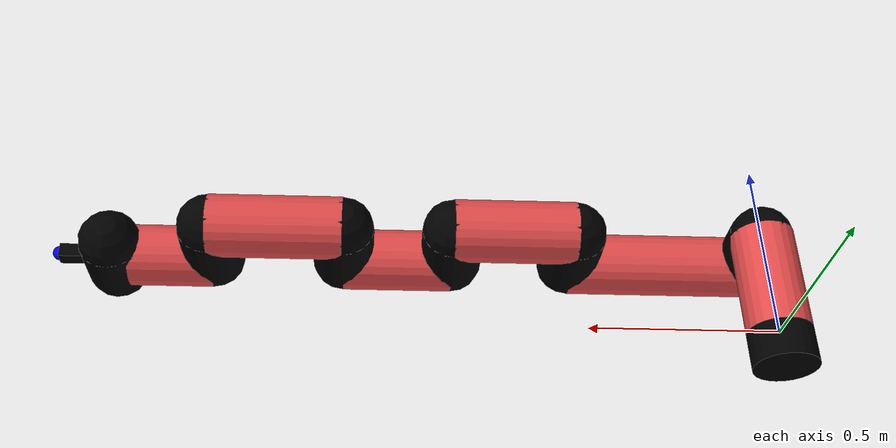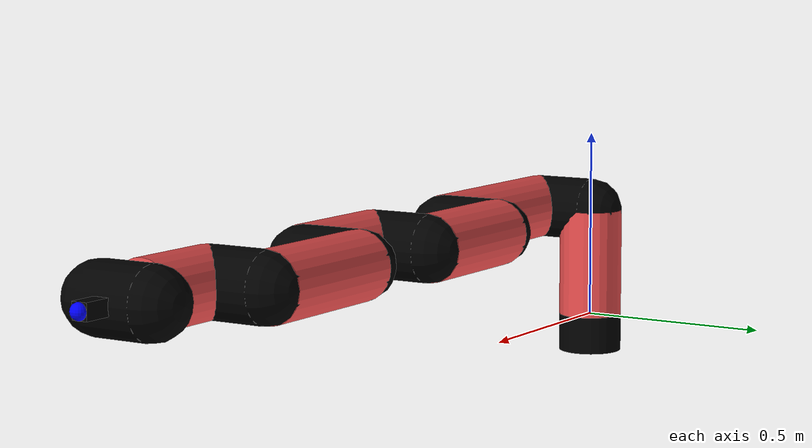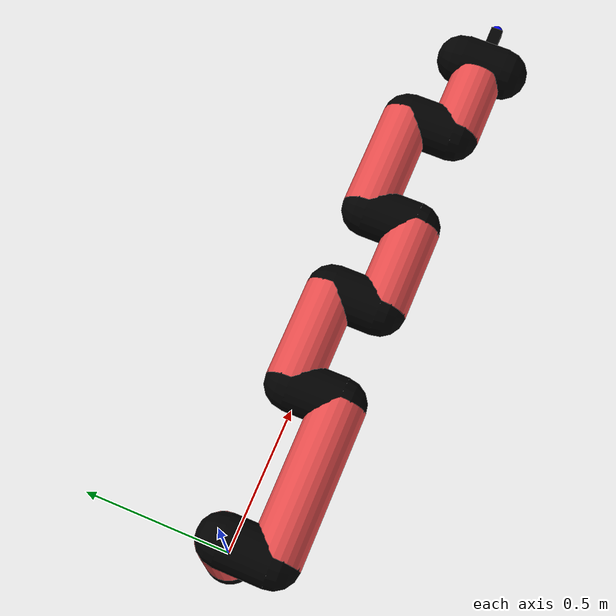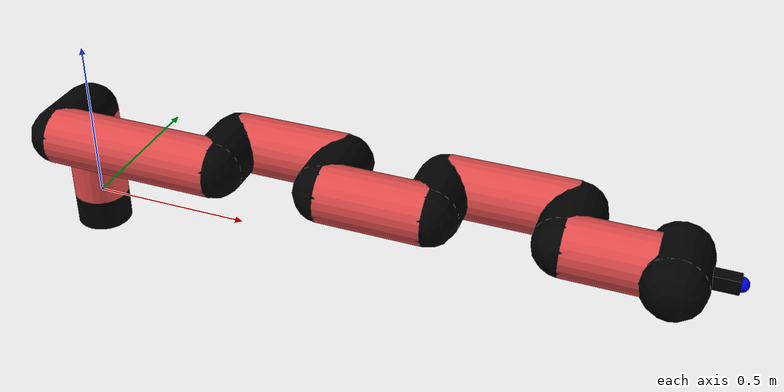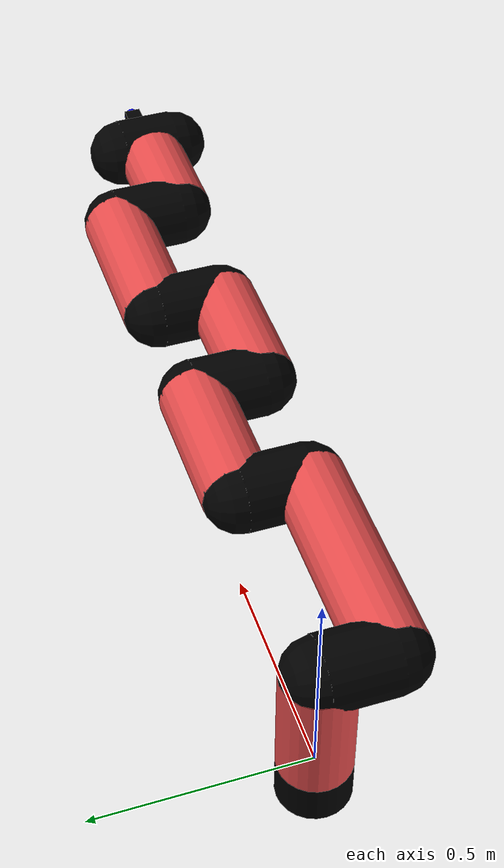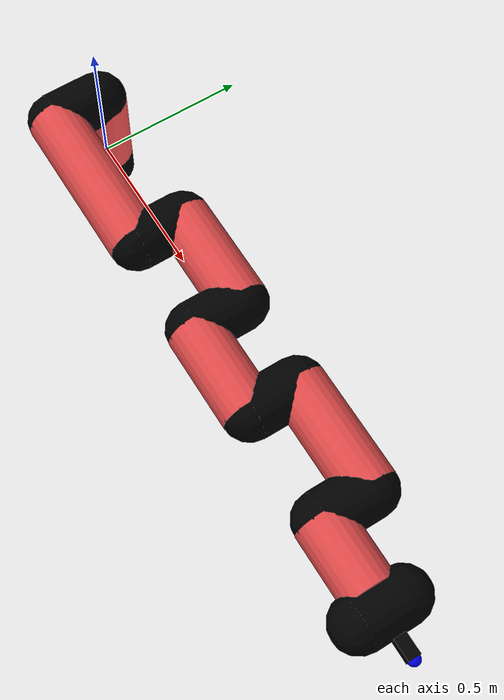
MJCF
<mujoco model="manipulator">
		<compiler angle="degree" coordinate="local" inertiafromgeom="auto" meshdir="meshes/"/>
		<option gravity="0 0 0" integrator="RK4" iterations="30" timestep="0.01"/>

		<default>
		<joint armature="1" limited="true" stiffness="10" damping="15" frictionloss="5.0"/>
		<geom conaffinity="1" condim="3" contype="1" friction=".5 .1 .1" margin="0.002"/>
		<motor ctrllimited="true"/>
		<position ctrllimited="true"/>
		</default>

		<asset>
		<texture builtin="gradient" height="100" rgb1="1.0 1.0 1.0" rgb2="1.0 1.0 1.0" type="skybox" width="100"/>
		<texture builtin="flat" height="32" name="arm_tex" rgb1="0.9 0.3 0.3" type="2d" width="32"/>
		<texture builtin="flat" height="32" name="gripper_tex" rgb1="0.0 0.0 0.0" type="cube" width="32"/>

		<material name="arm_mat" shininess="0.1" specular="0.1" texture="arm_tex"/>
		<material name="gripper_mat" shininess="1" specular="1" texture="gripper_tex"/>
		</asset>

		<worldbody>
		<light cutoff="45" diffuse=".8 .8 .8" dir="0 0.16 -1" directional="false" name="light" pos="0 -2.0 8.0" specular="0.3 0.3 0.3"/>

		<body name="base_link" pos="0 0 -0.1">
		<geom fromto="0 0 0 0 0 0.1" material="arm_mat" name="base_link" rgba="0.0 0.0 0.0 1" size="0.085" type="cylinder"/>
		</body>

		<body name="l1" pos="0 0 0">
<geom fromto="0 0 0 0 0 0.29" material="arm_mat" name="l1" rgba="0.9 0.3 0.3 1" size="0.085" type="cylinder"/>
<geom fromto="0 0 0.29 0 -0.16 0.29" material="arm_mat" name="l1_ex" rgba="0.0 0.0 0.0 1" size="0.085" type="capsule"/>
<joint axis="0 0 1" name="j1" pos="0 0 0" range="-90 90" damping="31.69" frictionloss="8.67"/>

<body name="l2" pos="0 -0.16 0.29">
<geom fromto="0 0 0 0.51 0 0" material="arm_mat" name="l2" rgba="0.9 0.3 0.3 1" size="0.085" type="cylinder"/>
<geom fromto="0.51 0 0 0.51 0.16 0" material="arm_mat" name="l2_ex" rgba="0.0 0.0 0.0 1" size="0.085" type="capsule"/>
<joint axis="0.14 1.03 -0.02" name="j2" pos="0 0 0" range="-90 60" damping="30.01" frictionloss="10.74"/>

<body name="l3" pos="0.51 0.16 0">
<geom fromto="0 0 0 0.33 0 0" material="arm_mat" name="l3" rgba="0.9 0.3 0.3 1" size="0.085" type="cylinder"/>
<geom fromto="0.33 0 0 0.33 -0.16 0" material="arm_mat" name="l3_ex" rgba="0.0 0.0 0.0 1" size="0.085" type="capsule"/>
<joint axis="-0.08 0.78 -0.06" name="j3" pos="0 0 0" range="-30 60" damping="33.47" frictionloss="8.69"/>

<body name="l4" pos="0.33 -0.16 0">
<geom fromto="0 0 0 0.3 0 0" material="arm_mat" name="l4" rgba="0.9 0.3 0.3 1" size="0.085" type="cylinder"/>
<geom fromto="0.3 0 0 0.3 0.16 0" material="arm_mat" name="l4_ex" rgba="0.0 0.0 0.0 1" size="0.085" type="capsule"/>
<joint axis="-0.21 1.24 -0.16" name="j4" pos="0 0 0" range="-30 60" damping="25.88" frictionloss="9.56"/>

<body name="l5" pos="0.3 0.16 0">
<geom fromto="0 0 0 0.36 0 0" material="arm_mat" name="l5" rgba="0.9 0.3 0.3 1" size="0.085" type="cylinder"/>
<geom fromto="0.36 0 0 0.36 -0.16 0" material="arm_mat" name="l5_ex" rgba="0.0 0.0 0.0 1" size="0.085" type="capsule"/>
<joint axis="0.16 1.19 0.09" name="j5" pos="0 0 0" range="-30 60" damping="36.27" frictionloss="8.88"/>

<body name="l6" pos="0.36 -0.16 0">
<geom fromto="0 0 0 0.23 0 0" material="arm_mat" name="l6" rgba="0.9 0.3 0.3 1" size="0.085" type="cylinder"/>
<joint axis="0.03 0.83 -0.02" name="j6" pos="0 0 0" range="-30 60" damping="23.57" frictionloss="10.06"/>

<body name="gripper" pos="0.23 0 0">
<geom fromto="0.05 -0.07 0 0.05 0.07 0" material="gripper_mat" name="gripper" rgba="0.0 0.0 0.0 1" size="0.085" type="capsule"/><joint axis="1 0 0" name="j7" pos="0 0 0" range="-90 90" damping="15" frictionloss="5.0"/><body name="finger" pos="0.1 0 0">
<geom fromto="0 0.0 0 0.1 0.0 0" material="gripper_mat" name="finger" rgba="0.0 0.0 0.0 1" size="0.020 0.06 0.06" type="box"/>
</body>
<site name="current" pos="0.2 0. 0.0" rgba="0. 0. 1.0 1" size="0.02" type="sphere"/>
</body>
</body>
</body>
</body>
</body>
</body>
</body>
</worldbody>
<actuator>
<motor ctrllimited="true" ctrlrange="-1.0 1.0" joint="j1" gear="60.3"/>
<motor ctrllimited="true" ctrlrange="-1.0 1.0" joint="j2" gear="77.53"/>
<motor ctrllimited="true" ctrlrange="-1.0 1.0" joint="j3" gear="79.8"/>
<motor ctrllimited="true" ctrlrange="-1.0 1.0" joint="j4" gear="82.42"/>
<motor ctrllimited="true" ctrlrange="-1.0 1.0" joint="j5" gear="85.86"/>
<motor ctrllimited="true" ctrlrange="-1.0 1.0" joint="j6" gear="95.1"/>
<motor ctrllimited="true" ctrlrange="-1.0 1.0" joint="j7" gear="80"/>
</actuator>
</mujoco>
